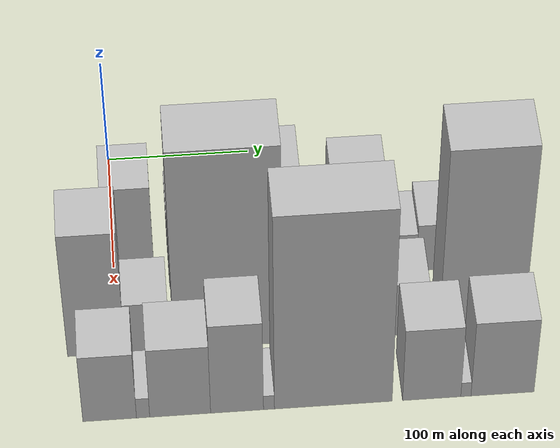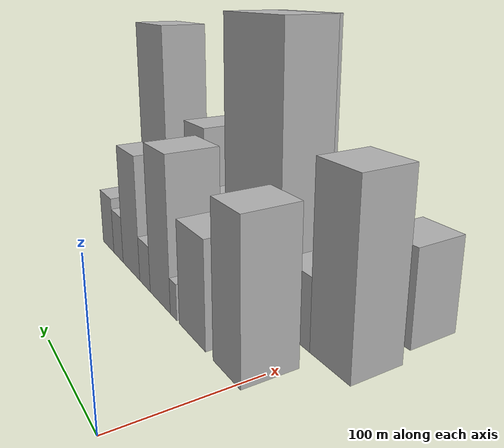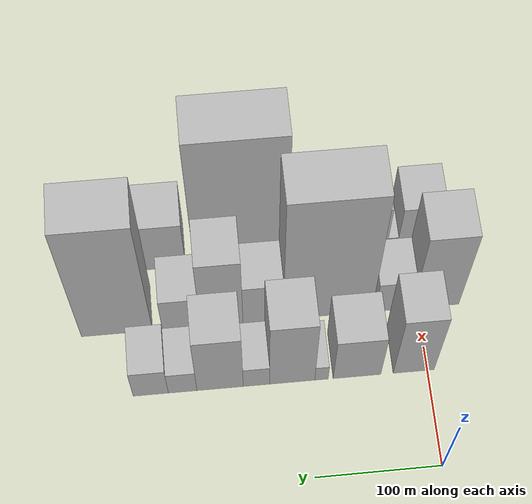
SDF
<sdf version="1.6">
 <world name="default">
  <model name="building_20">
   <static>1</static>
   <pose>100.0000 11.2909 0 0.000000 0.000000 0.000000</pose>
   <link name="link">
    <pose>0 0 52.50 0 0 0</pose>
    <collision name="collision"><geometry><box><size>40.0000 33.2602 105.0000</size></box></geometry></collision>
    <visual name="visual">
     <cast_shadows>0</cast_shadows>
     <geometry><box><size>40.0000 33.2602 105.0000</size></box></geometry>
     <material>
      <script>
       <uri>model://HANNAS_wall/materials/scripts</uri>
       <uri>model://HANNAS_wall/materials/textures</uri>
       <name>vrc/HANNAS_wall</name>
      </script>
     </material>
    </visual>
   </link>
  </model>
  <model name="building_21">
   <static>1</static>
   <pose>100.0000 57.2294 0 0.000000 0.000000 0.000000</pose>
   <link name="link">
    <pose>0 0 37.50 0 0 0</pose>
    <collision name="collision"><geometry><box><size>40.0000 38.6168 75.0000</size></box></geometry></collision>
    <visual name="visual">
     <cast_shadows>0</cast_shadows>
     <geometry><box><size>40.0000 38.6168 75.0000</size></box></geometry>
     <material>
      <script>
       <uri>model://HANNAS_wall/materials/scripts</uri>
       <uri>model://HANNAS_wall/materials/textures</uri>
       <name>vrc/HANNAS_wall</name>
      </script>
     </material>
    </visual>
   </link>
  </model>
  <model name="building_22">
   <static>1</static>
   <pose>100.0000 85.9400 0 0.000000 0.000000 0.000000</pose>
   <link name="link">
    <pose>0 0 13.50 0 0 0</pose>
    <collision name="collision"><geometry><box><size>40.0000 10.8043 27.0000</size></box></geometry></collision>
    <visual name="visual">
     <cast_shadows>0</cast_shadows>
     <geometry><box><size>40.0000 10.8043 27.0000</size></box></geometry>
     <material>
      <script>
       <uri>model://HANNAS_wall/materials/scripts</uri>
       <uri>model://HANNAS_wall/materials/textures</uri>
       <name>vrc/HANNAS_wall</name>
      </script>
     </material>
    </visual>
   </link>
  </model>
  <model name="building_23">
   <static>1</static>
   <pose>100.0000 109.5567 0 0.000000 0.000000 0.000000</pose>
   <link name="link">
    <pose>0 0 57.00 0 0 0</pose>
    <collision name="collision"><geometry><box><size>40.0000 36.4291 114.0000</size></box></geometry></collision>
    <visual name="visual">
     <cast_shadows>0</cast_shadows>
     <geometry><box><size>40.0000 36.4291 114.0000</size></box></geometry>
     <material>
      <script>
       <uri>model://HANNAS_wall/materials/scripts</uri>
       <uri>model://HANNAS_wall/materials/textures</uri>
       <name>vrc/HANNAS_wall</name>
      </script>
     </material>
    </visual>
   </link>
  </model>
  <model name="building_24">
   <static>1</static>
   <pose>100.0000 138.3412 0 0.000000 0.000000 0.000000</pose>
   <link name="link">
    <pose>0 0 18.00 0 0 0</pose>
    <collision name="collision"><geometry><box><size>40.0000 21.1399 36.0000</size></box></geometry></collision>
    <visual name="visual">
     <cast_shadows>0</cast_shadows>
     <geometry><box><size>40.0000 21.1399 36.0000</size></box></geometry>
     <material>
      <script>
       <uri>model://HANNAS_wall/materials/scripts</uri>
       <uri>model://HANNAS_wall/materials/textures</uri>
       <name>vrc/HANNAS_wall</name>
      </script>
     </material>
    </visual>
   </link>
  </model>
  <model name="building_25">
   <static>1</static>
   <pose>100.0000 167.5153 0 0.000000 0.000000 0.000000</pose>
   <link name="link">
    <pose>0 0 49.50 0 0 0</pose>
    <collision name="collision"><geometry><box><size>40.0000 37.2082 99.0000</size></box></geometry></collision>
    <visual name="visual">
     <cast_shadows>0</cast_shadows>
     <geometry><box><size>40.0000 37.2082 99.0000</size></box></geometry>
     <material>
      <script>
       <uri>model://HANNAS_wall/materials/scripts</uri>
       <uri>model://HANNAS_wall/materials/textures</uri>
       <name>vrc/HANNAS_wall</name>
      </script>
     </material>
    </visual>
   </link>
  </model>
  <model name="building_26">
   <static>1</static>
   <pose>100.0000 197.5822 0 0.000000 0.000000 0.000000</pose>
   <link name="link">
    <pose>0 0 19.50 0 0 0</pose>
    <collision name="collision"><geometry><box><size>40.0000 22.9257 39.0000</size></box></geometry></collision>
    <visual name="visual">
     <cast_shadows>0</cast_shadows>
     <geometry><box><size>40.0000 22.9257 39.0000</size></box></geometry>
     <material>
      <script>
       <uri>model://HANNAS_wall/materials/scripts</uri>
       <uri>model://HANNAS_wall/materials/textures</uri>
       <name>vrc/HANNAS_wall</name>
      </script>
     </material>
    </visual>
   </link>
  </model>
  <model name="building_27">
   <static>1</static>
   <pose>100.0000 223.0981 0 0.000000 0.000000 0.000000</pose>
   <link name="link">
    <pose>0 0 24.00 0 0 0</pose>
    <collision name="collision"><geometry><box><size>40.0000 28.1060 48.0000</size></box></geometry></collision>
    <visual name="visual">
     <cast_shadows>0</cast_shadows>
     <geometry><box><size>40.0000 28.1060 48.0000</size></box></geometry>
     <material>
      <script>
       <uri>model://HANNAS_wall/materials/scripts</uri>
       <uri>model://HANNAS_wall/materials/textures</uri>
       <name>vrc/HANNAS_wall</name>
      </script>
     </material>
    </visual>
   </link>
  </model>
  <model name="building_52">
   <static>1</static>
   <pose>155.0000 -14.5648 0 0.000000 0.000000 0.000000</pose>
   <link name="link">
    <pose>0 0 63.00 0 0 0</pose>
    <collision name="collision"><geometry><box><size>40.0000 38.6658 126.0000</size></box></geometry></collision>
    <visual name="visual">
     <cast_shadows>0</cast_shadows>
     <geometry><box><size>40.0000 38.6658 126.0000</size></box></geometry>
     <material>
      <script>
       <uri>model://HANNAS_wall/materials/scripts</uri>
       <uri>model://HANNAS_wall/materials/textures</uri>
       <name>vrc/HANNAS_wall</name>
      </script>
     </material>
    </visual>
   </link>
  </model>
  <model name="building_53">
   <static>1</static>
   <pose>155.0000 19.9954 0 0.000000 0.000000 0.000000</pose>
   <link name="link">
    <pose>0 0 25.50 0 0 0</pose>
    <collision name="collision"><geometry><box><size>40.0000 30.4547 51.0000</size></box></geometry></collision>
    <visual name="visual">
     <cast_shadows>0</cast_shadows>
     <geometry><box><size>40.0000 30.4547 51.0000</size></box></geometry>
     <material>
      <script>
       <uri>model://HANNAS_wall/materials/scripts</uri>
       <uri>model://HANNAS_wall/materials/textures</uri>
       <name>vrc/HANNAS_wall</name>
      </script>
     </material>
    </visual>
   </link>
  </model>
  <model name="building_54">
   <static>1</static>
   <pose>155.0000 74.8193 0 0.000000 0.000000 0.000000</pose>
   <link name="link">
    <pose>0 0 100.50 0 0 0</pose>
    <collision name="collision"><geometry><box><size>40.0000 73.1931 201.0000</size></box></geometry></collision>
    <visual name="visual">
     <cast_shadows>0</cast_shadows>
     <geometry><box><size>40.0000 73.1931 201.0000</size></box></geometry>
     <material>
      <script>
       <uri>model://HANNAS_wall/materials/scripts</uri>
       <uri>model://HANNAS_wall/materials/textures</uri>
       <name>vrc/HANNAS_wall</name>
      </script>
     </material>
    </visual>
   </link>
  </model>
  <model name="building_55">
   <static>1</static>
   <pose>155.0000 127.9329 0 0.000000 0.000000 0.000000</pose>
   <link name="link">
    <pose>0 0 33.00 0 0 0</pose>
    <collision name="collision"><geometry><box><size>40.0000 33.0342 66.0000</size></box></geometry></collision>
    <visual name="visual">
     <cast_shadows>0</cast_shadows>
     <geometry><box><size>40.0000 33.0342 66.0000</size></box></geometry>
     <material>
      <script>
       <uri>model://HANNAS_wall/materials/scripts</uri>
       <uri>model://HANNAS_wall/materials/textures</uri>
       <name>vrc/HANNAS_wall</name>
      </script>
     </material>
    </visual>
   </link>
  </model>
  <model name="building_56">
   <static>1</static>
   <pose>155.0000 161.9922 0 0.000000 0.000000 0.000000</pose>
   <link name="link">
    <pose>0 0 57.00 0 0 0</pose>
    <collision name="collision"><geometry><box><size>40.0000 35.0843 114.0000</size></box></geometry></collision>
    <visual name="visual">
     <cast_shadows>0</cast_shadows>
     <geometry><box><size>40.0000 35.0843 114.0000</size></box></geometry>
     <material>
      <script>
       <uri>model://HANNAS_wall/materials/scripts</uri>
       <uri>model://HANNAS_wall/materials/textures</uri>
       <name>vrc/HANNAS_wall</name>
      </script>
     </material>
    </visual>
   </link>
  </model>
  <model name="building_57">
   <static>1</static>
   <pose>155.0000 195.0252 0 0.000000 0.000000 0.000000</pose>
   <link name="link">
    <pose>0 0 27.00 0 0 0</pose>
    <collision name="collision"><geometry><box><size>40.0000 30.9818 54.0000</size></box></geometry></collision>
    <visual name="visual">
     <cast_shadows>0</cast_shadows>
     <geometry><box><size>40.0000 30.9818 54.0000</size></box></geometry>
     <material>
      <script>
       <uri>model://HANNAS_wall/materials/scripts</uri>
       <uri>model://HANNAS_wall/materials/textures</uri>
       <name>vrc/HANNAS_wall</name>
      </script>
     </material>
    </visual>
   </link>
  </model>
  <model name="building_58">
   <static>1</static>
   <pose>155.0000 247.5119 0 0.000000 0.000000 0.000000</pose>
   <link name="link">
    <pose>0 0 93.00 0 0 0</pose>
    <collision name="collision"><geometry><box><size>40.0000 57.9915 186.0000</size></box></geometry></collision>
    <visual name="visual">
     <cast_shadows>0</cast_shadows>
     <geometry><box><size>40.0000 57.9915 186.0000</size></box></geometry>
     <material>
      <script>
       <uri>model://HANNAS_wall/materials/scripts</uri>
       <uri>model://HANNAS_wall/materials/textures</uri>
       <name>vrc/HANNAS_wall</name>
      </script>
     </material>
    </visual>
   </link>
  </model>
  <model name="building_82">
   <static>1</static>
   <pose>210.0000 -7.5875 0 0.000000 0.000000 0.000000</pose>
   <link name="link">
    <pose>0 0 34.50 0 0 0</pose>
    <collision name="collision"><geometry><box><size>40.0000 35.5237 69.0000</size></box></geometry></collision>
    <visual name="visual">
     <cast_shadows>0</cast_shadows>
     <geometry><box><size>40.0000 35.5237 69.0000</size></box></geometry>
     <material>
      <script>
       <uri>model://HANNAS_wall/materials/scripts</uri>
       <uri>model://HANNAS_wall/materials/textures</uri>
       <name>vrc/HANNAS_wall</name>
      </script>
     </material>
    </visual>
   </link>
  </model>
  <model name="building_83">
   <static>1</static>
   <pose>210.0000 14.5669 0 0.000000 0.000000 0.000000</pose>
   <link name="link">
    <pose>0 0 10.50 0 0 0</pose>
    <collision name="collision"><geometry><box><size>40.0000 8.7852 21.0000</size></box></geometry></collision>
    <visual name="visual">
     <cast_shadows>0</cast_shadows>
     <geometry><box><size>40.0000 8.7852 21.0000</size></box></geometry>
     <material>
      <script>
       <uri>model://HANNAS_wall/materials/scripts</uri>
       <uri>model://HANNAS_wall/materials/textures</uri>
       <name>vrc/HANNAS_wall</name>
      </script>
     </material>
    </visual>
   </link>
  </model>
  <model name="building_84">
   <static>1</static>
   <pose>210.0000 39.2106 0 0.000000 0.000000 0.000000</pose>
   <link name="link">
    <pose>0 0 36.00 0 0 0</pose>
    <collision name="collision"><geometry><box><size>40.0000 40.5021 72.0000</size></box></geometry></collision>
    <visual name="visual">
     <cast_shadows>0</cast_shadows>
     <geometry><box><size>40.0000 40.5021 72.0000</size></box></geometry>
     <material>
      <script>
       <uri>model://HANNAS_wall/materials/scripts</uri>
       <uri>model://HANNAS_wall/materials/textures</uri>
       <name>vrc/HANNAS_wall</name>
      </script>
     </material>
    </visual>
   </link>
  </model>
  <model name="building_85">
   <static>1</static>
   <pose>210.0000 77.0712 0 0.000000 0.000000 0.000000</pose>
   <link name="link">
    <pose>0 0 46.50 0 0 0</pose>
    <collision name="collision"><geometry><box><size>40.0000 35.2192 93.0000</size></box></geometry></collision>
    <visual name="visual">
     <cast_shadows>0</cast_shadows>
     <geometry><box><size>40.0000 35.2192 93.0000</size></box></geometry>
     <material>
      <script>
       <uri>model://HANNAS_wall/materials/scripts</uri>
       <uri>model://HANNAS_wall/materials/textures</uri>
       <name>vrc/HANNAS_wall</name>
      </script>
     </material>
    </visual>
   </link>
  </model>
  <model name="building_86">
   <static>1</static>
   <pose>210.0000 98.3388 0 0.000000 0.000000 0.000000</pose>
   <link name="link">
    <pose>0 0 7.50 0 0 0</pose>
    <collision name="collision"><geometry><box><size>40.0000 7.3161 15.0000</size></box></geometry></collision>
    <visual name="visual">
     <cast_shadows>0</cast_shadows>
     <geometry><box><size>40.0000 7.3161 15.0000</size></box></geometry>
     <material>
      <script>
       <uri>model://HANNAS_wall/materials/scripts</uri>
       <uri>model://HANNAS_wall/materials/textures</uri>
       <name>vrc/HANNAS_wall</name>
      </script>
     </material>
    </visual>
   </link>
  </model>
  <model name="building_87">
   <static>1</static>
   <pose>210.0000 141.3294 0 0.000000 0.000000 0.000000</pose>
   <link name="link">
    <pose>0 0 99.00 0 0 0</pose>
    <collision name="collision"><geometry><box><size>40.0000 78.6651 198.0000</size></box></geometry></collision>
    <visual name="visual">
     <cast_shadows>0</cast_shadows>
     <geometry><box><size>40.0000 78.6651 198.0000</size></box></geometry>
     <material>
      <script>
       <uri>model://HANNAS_wall/materials/scripts</uri>
       <uri>model://HANNAS_wall/materials/textures</uri>
       <name>vrc/HANNAS_wall</name>
      </script>
     </material>
    </visual>
   </link>
  </model>
  <model name="building_88">
   <static>1</static>
   <pose>210.0000 207.1966 0 0.000000 0.000000 0.000000</pose>
   <link name="link">
    <pose>0 0 37.50 0 0 0</pose>
    <collision name="collision"><geometry><box><size>40.0000 39.0692 75.0000</size></box></geometry></collision>
    <visual name="visual">
     <cast_shadows>0</cast_shadows>
     <geometry><box><size>40.0000 39.0692 75.0000</size></box></geometry>
     <material>
      <script>
       <uri>model://HANNAS_wall/materials/scripts</uri>
       <uri>model://HANNAS_wall/materials/textures</uri>
       <name>vrc/HANNAS_wall</name>
      </script>
     </material>
    </visual>
   </link>
  </model>
  <model name="building_89">
   <static>1</static>
   <pose>210.0000 230.1415 0 0.000000 0.000000 0.000000</pose>
   <link name="link">
    <pose>0 0 7.50 0 0 0</pose>
    <collision name="collision"><geometry><box><size>40.0000 6.8207 15.0000</size></box></geometry></collision>
    <visual name="visual">
     <cast_shadows>0</cast_shadows>
     <geometry><box><size>40.0000 6.8207 15.0000</size></box></geometry>
     <material>
      <script>
       <uri>model://HANNAS_wall/materials/scripts</uri>
       <uri>model://HANNAS_wall/materials/textures</uri>
       <name>vrc/HANNAS_wall</name>
      </script>
     </material>
    </visual>
   </link>
  </model>
  <model name="building_90">
   <static>1</static>
   <pose>210.0000 254.7533 0 0.000000 0.000000 0.000000</pose>
   <link name="link">
    <pose>0 0 39.00 0 0 0</pose>
    <collision name="collision"><geometry><box><size>40.0000 42.4030 78.0000</size></box></geometry></collision>
    <visual name="visual">
     <cast_shadows>0</cast_shadows>
     <geometry><box><size>40.0000 42.4030 78.0000</size></box></geometry>
     <material>
      <script>
       <uri>model://HANNAS_wall/materials/scripts</uri>
       <uri>model://HANNAS_wall/materials/textures</uri>
       <name>vrc/HANNAS_wall</name>
      </script>
     </material>
    </visual>
   </link>
  </model>
 </world>
</sdf>
